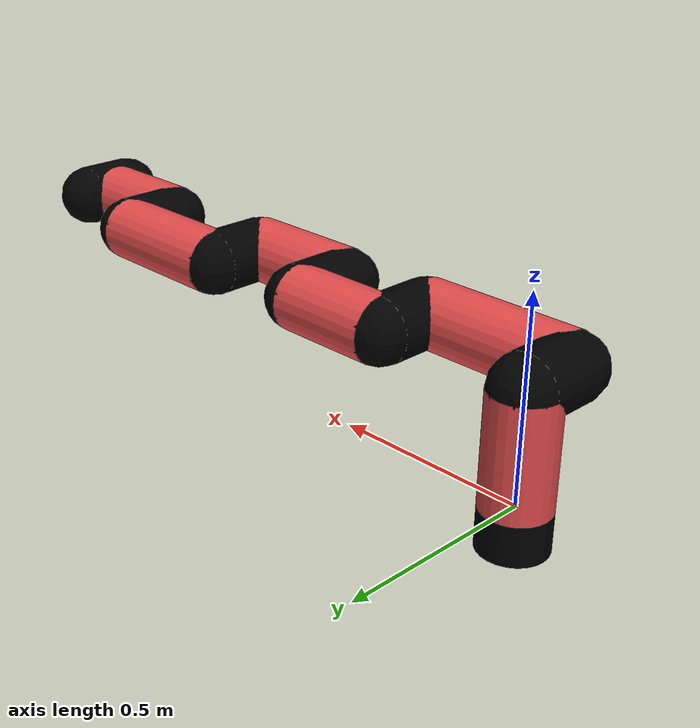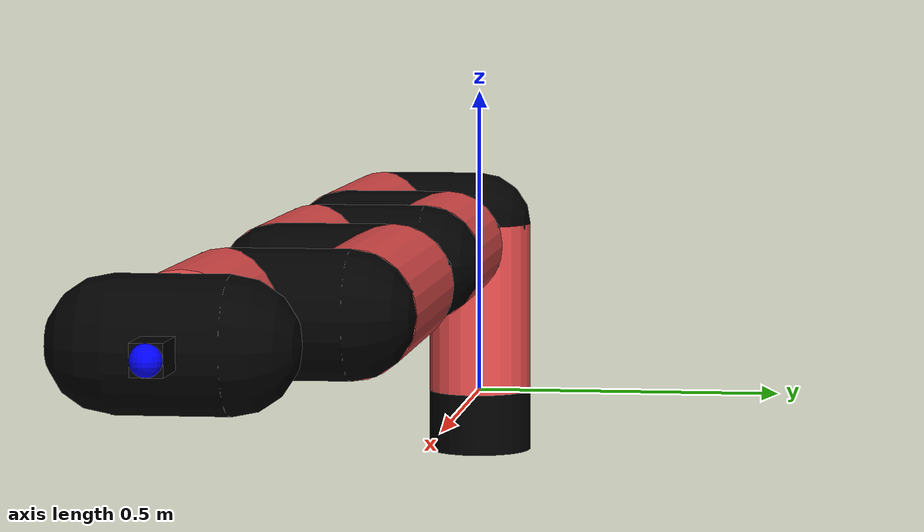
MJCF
<mujoco model="manipulator">
		<compiler angle="degree" coordinate="local" inertiafromgeom="auto" meshdir="meshes/"/>
		<option gravity="0 0 0" integrator="RK4" iterations="30" timestep="0.01"/>

		<default>
		<joint armature="1" limited="true" stiffness="10" damping="15" frictionloss="5.0"/>
		<geom conaffinity="1" condim="3" contype="1" friction=".5 .1 .1" margin="0.002"/>
		<motor ctrllimited="true"/>
		<position ctrllimited="true"/>
		</default>

		<asset>
		<texture builtin="gradient" height="100" rgb1="1.0 1.0 1.0" rgb2="1.0 1.0 1.0" type="skybox" width="100"/>
		<texture builtin="flat" height="32" name="arm_tex" rgb1="0.9 0.3 0.3" type="2d" width="32"/>
		<texture builtin="flat" height="32" name="gripper_tex" rgb1="0.0 0.0 0.0" type="cube" width="32"/>

		<material name="arm_mat" shininess="0.1" specular="0.1" texture="arm_tex"/>
		<material name="gripper_mat" shininess="1" specular="1" texture="gripper_tex"/>
		</asset>

		<worldbody>
		<light cutoff="45" diffuse=".8 .8 .8" dir="0 0.16 -1" directional="false" name="light" pos="0 -2.0 8.0" specular="0.3 0.3 0.3"/>

		<body name="base_link" pos="0 0 -0.1">
		<geom fromto="0 0 0 0 0 0.1" material="arm_mat" name="base_link" rgba="0.0 0.0 0.0 1" size="0.085" type="cylinder"/>
		</body>

		<body name="l1" pos="0 0 0">
<geom fromto="0 0 0 0 0 0.28" material="arm_mat" name="l1" rgba="0.9 0.3 0.3 1" size="0.085" type="cylinder"/>
<geom fromto="0 0 0.28 0 -0.16 0.28" material="arm_mat" name="l1_ex" rgba="0.0 0.0 0.0 1" size="0.085" type="capsule"/>
<joint axis="0 0 1" name="j1" pos="0 0 0" range="-90 90" damping="34.6" frictionloss="10.23"/>

<body name="l2" pos="0 -0.16 0.28">
<geom fromto="0 0 0 0.41 0 0" material="arm_mat" name="l2" rgba="0.9 0.3 0.3 1" size="0.085" type="cylinder"/>
<geom fromto="0.41 0 0 0.41 0.16 0" material="arm_mat" name="l2_ex" rgba="0.0 0.0 0.0 1" size="0.085" type="capsule"/>
<joint axis="0.0 1.0 0.0" name="j2" pos="0 0 0" range="-90 60" damping="34.9" frictionloss="12.43"/>

<body name="l3" pos="0.41 0.16 0">
<geom fromto="0 0 0 0.27 0 0" material="arm_mat" name="l3" rgba="0.9 0.3 0.3 1" size="0.085" type="cylinder"/>
<geom fromto="0.27 0 0 0.27 -0.16 0" material="arm_mat" name="l3_ex" rgba="0.0 0.0 0.0 1" size="0.085" type="capsule"/>
<joint axis="0.0 1.0 0.0" name="j3" pos="0 0 0" range="-30 60" damping="24.01" frictionloss="11.32"/>

<body name="l4" pos="0.27 -0.16 0">
<geom fromto="0 0 0 0.32 0 0" material="arm_mat" name="l4" rgba="0.9 0.3 0.3 1" size="0.085" type="cylinder"/>
<geom fromto="0.32 0 0 0.32 0.16 0" material="arm_mat" name="l4_ex" rgba="0.0 0.0 0.0 1" size="0.085" type="capsule"/>
<joint axis="0.0 1.0 0.0" name="j4" pos="0 0 0" range="-30 60" damping="23.97" frictionloss="12.32"/>

<body name="l5" pos="0.32 0.16 0">
<geom fromto="0 0 0 0.37 0 0" material="arm_mat" name="l5" rgba="0.9 0.3 0.3 1" size="0.085" type="cylinder"/>
<geom fromto="0.37 0 0 0.37 -0.16 0" material="arm_mat" name="l5_ex" rgba="0.0 0.0 0.0 1" size="0.085" type="capsule"/>
<joint axis="0.0 1.0 0.0" name="j5" pos="0 0 0" range="-30 60" damping="22.62" frictionloss="8.97"/>

<body name="l6" pos="0.37 -0.16 0">
<geom fromto="0 0 0 0.28 0 0" material="arm_mat" name="l6" rgba="0.9 0.3 0.3 1" size="0.085" type="cylinder"/>
<joint axis="0.0 1.0 0.0" name="j6" pos="0 0 0" range="-30 60" damping="25.64" frictionloss="12.4"/>

<body name="gripper" pos="0.28 0 0">
<geom fromto="0.05 -0.07 0 0.05 0.07 0" material="gripper_mat" name="gripper" rgba="0.0 0.0 0.0 1" size="0.085" type="capsule"/><joint axis="1 0 0" name="j7" pos="0 0 0" range="-90 90" damping="15" frictionloss="5.0"/><body name="finger" pos="0.1 0 0">
<geom fromto="0 0.0 0 0.1 0.0 0" material="gripper_mat" name="finger" rgba="0.0 0.0 0.0 1" size="0.020 0.06 0.06" type="box"/>
</body>
<site name="current" pos="0.2 0. 0.0" rgba="0. 0. 1.0 1" size="0.02" type="sphere"/>
</body>
</body>
</body>
</body>
</body>
</body>
</body>
</worldbody>
<actuator>
<motor ctrllimited="true" ctrlrange="-1.0 1.0" joint="j1" gear="96.89"/>
<motor ctrllimited="true" ctrlrange="-1.0 1.0" joint="j2" gear="99.33"/>
<motor ctrllimited="true" ctrlrange="-1.0 1.0" joint="j3" gear="77.6"/>
<motor ctrllimited="true" ctrlrange="-1.0 1.0" joint="j4" gear="75.81"/>
<motor ctrllimited="true" ctrlrange="-1.0 1.0" joint="j5" gear="78.77"/>
<motor ctrllimited="true" ctrlrange="-1.0 1.0" joint="j6" gear="81.93"/>
<motor ctrllimited="true" ctrlrange="-1.0 1.0" joint="j7" gear="80"/>
</actuator>
</mujoco>
